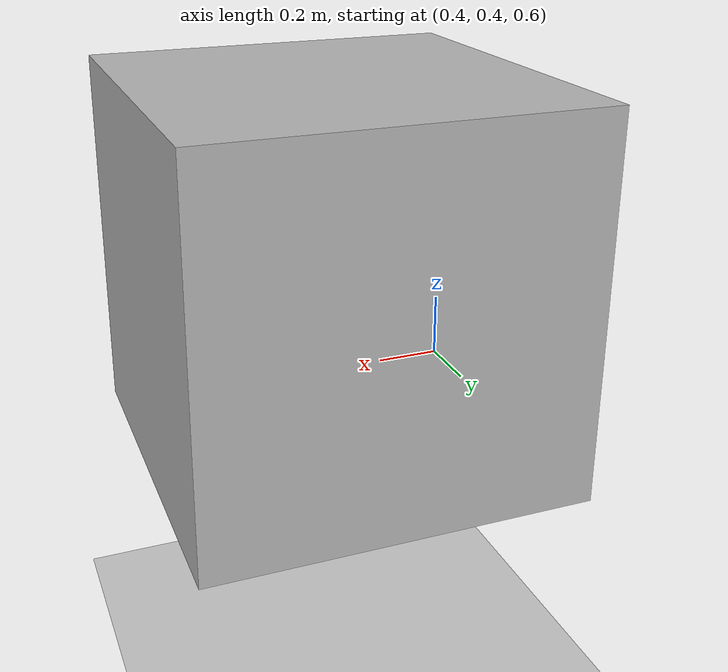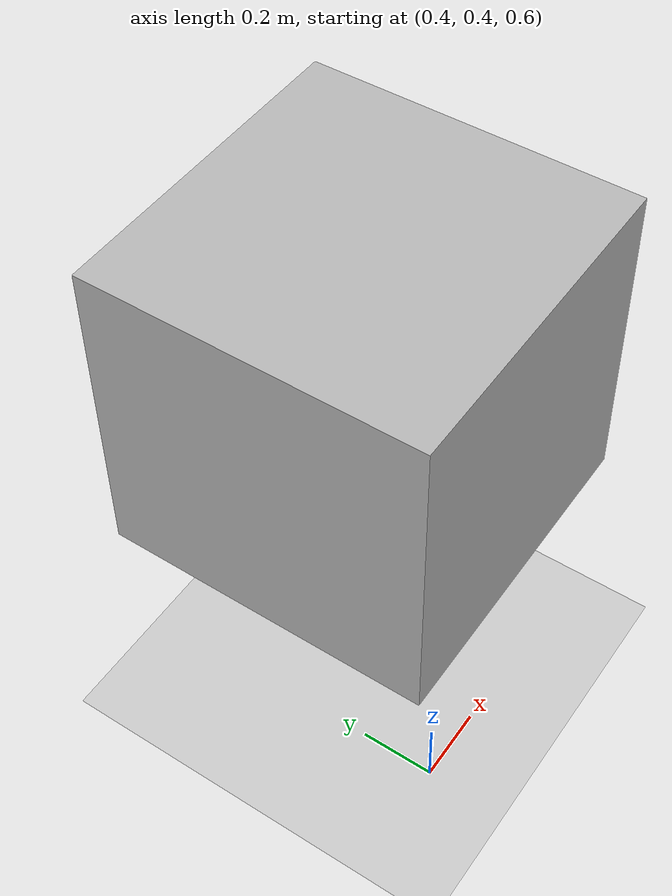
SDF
<?xml version="1.0"?>
<sdf version="1.4">
  <world name="default">
    <!-- Ground Plane -->
    <include>
      <uri>model://ground_plane</uri>
    </include>
    <include>
      <uri>model://sun</uri>
    </include>
    <!-- Model under the effect of the plugin -->
    <model name="box">
      <pose>1 1 1.2 0 0 0</pose>
      <link name="link">
        <collision name="collision">
          <geometry>
            <box>
              <size>1 1 1</size>
            </box>
          </geometry>
        </collision>
        <visual name="visual">
          <geometry>
            <box>
              <size>1 1 1</size>
            </box>
          </geometry>
        </visual>
      </link>
      <!-- Here we associate the plugin to this model -->
      <plugin name="model_push" filename="libset_velocity.so"/>
    </model>
  </world>
</sdf>
